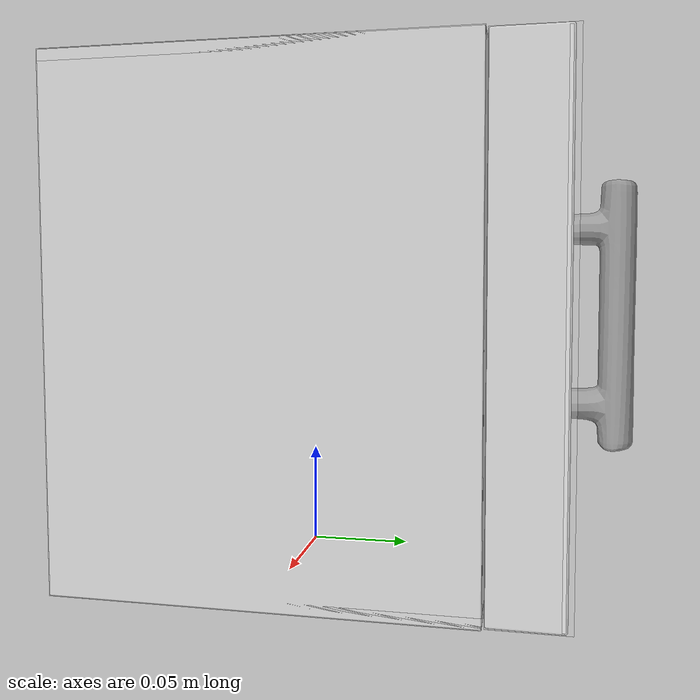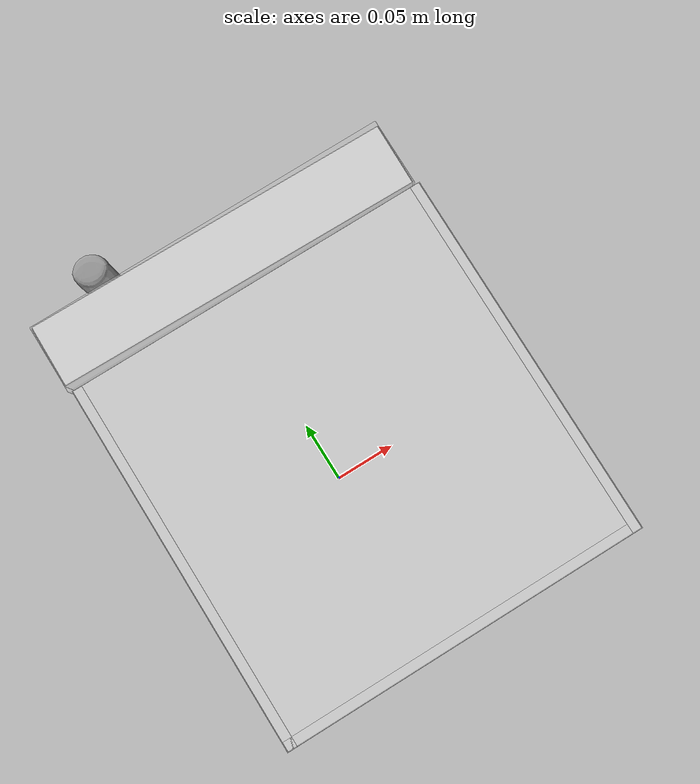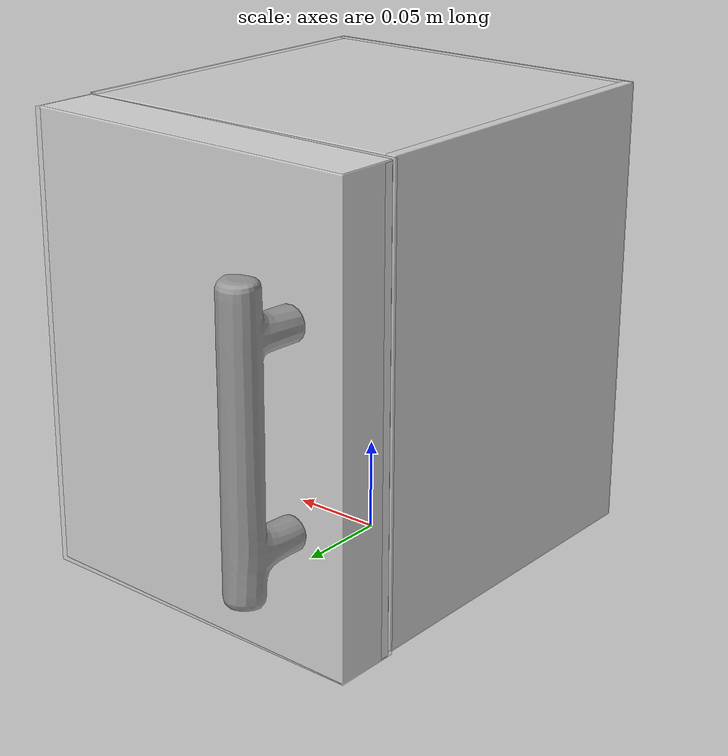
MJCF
<mujoco model="new_fridge">
    <compiler angle="radian" meshdir="./" />
    <size njmax="500" nconmax="100" />
    <asset>
        <mesh name="body_vis" file="new_fridge/body.obj" scale="0.1 0.1 0.1" />
        <mesh name="tray_vis" file="new_fridge/tray.obj" scale="0.1 0.1 0.1" />
        <mesh name="door_outer_vis" file="new_fridge/door_outer.obj" scale="0.1 0.1 0.1" />
        <mesh name="door_inner_vis" file="new_fridge/door_inner.obj" scale="0.1 0.1 0.1" />
        <mesh name="handle_vis" file="new_fridge/handle.obj" scale="0.1 0.1 0.1" />
    </asset>
    <worldbody>
        <body>
          <body name="object">
            <body name="base" pos="0.00000 0.00000 0.00200">

              <geom type="mesh" mesh="body_vis" conaffinity="0" contype="0" group="1" rgba="0.85 0.85 0.85 1" />
              <geom type="mesh" mesh="tray_vis" conaffinity="0" contype="0" group="1" rgba="0.8 0.8 0.8 1" />

              <geom type="box" pos="-0.08840 0.00000 0.11940" size="0.00260 0.09700 0.12140" rgba="0.8 0.8 0.8 0.3" group="0" solimp="0.998 0.998 0.001" solref="0.001 1" density="200" friction="0.95 0.3 0.1" />

              <geom type="box" pos="0.09920 0.00000 0.11940" size="0.00260 0.09700 0.12140" rgba="0.8 0.8 0.8 0.3" group="0" solimp="0.998 0.998 0.001" solref="0.001 1" density="200" friction="0.95 0.3 0.1" />

              <geom type="box" pos="0.00560 -0.09440 0.11940" size="0.09620 0.00260 0.12140" rgba="0.8 0.8 0.8 0.3" group="0" solimp="0.998 0.998 0.001" solref="0.001 1" density="200" friction="0.95 0.3 0.1" />

              <geom type="box" pos="0.00560 0.00000 0.23800" size="0.09620 0.09700 0.00260" rgba="0.8 0.8 0.8 0.3" group="0" solimp="0.998 0.998 0.001" solref="0.001 1" density="200" friction="0.95 0.3 0.1" />

              <geom type="box" pos="0.00560 0.00000 0.00060" size="0.09620 0.09700 0.00260" rgba="0.8 0.8 0.8 0.3" group="0" solimp="0.998 0.998 0.001" solref="0.001 1" density="200" friction="0.95 0.3 0.1" />

              <body name="door" pos="0.00000 0.00000 0.00000">
                <inertial pos="0.00000 0.00000 0.00000" mass="3" diaginertia="1 1 1" />

                <joint name="new_fridge_door_joint_0" type="hinge" pos="0.09280 0.10160 0.11920" axis="0 0 -1" limited="true" range="0.0 2.5" damping="1" />

                <geom type="mesh" mesh="door_outer_vis" conaffinity="0" contype="0" group="1" rgba="0.85 0.85 0.85 1" />
                <geom type="mesh" mesh="door_inner_vis" conaffinity="0" contype="0" group="1" rgba="0.9 0.9 0.9 1" />
                <geom type="mesh" mesh="handle_vis" conaffinity="0" contype="0" group="1" rgba="0.6 0.6 0.6 1" />

                <geom type="box" pos="0.00360 0.11600 0.11920" size="0.09640 0.01800 0.12120" rgba="0.8 0.8 0.8 0.3" group="0" solimp="0.998 0.998 0.001" solref="0.001 1" density="100" friction="0.95 0.3 0.1" />
              </body>

            </body>
          </body>
          <site rgba="0 0 0 0" size="0.05" pos="0.00000 0.00000 0.00200" name="bottom_site" />
          <site rgba="0 0 0 0" size="0.05" pos="0.00000 0.00000 0.24260" name="top_site" />
          <site rgba="0 0 0 0" size="0.05" pos="0.10200 0.09900 0.00000" name="horizontal_radius_site" />
        </body>
    </worldbody>
</mujoco>
